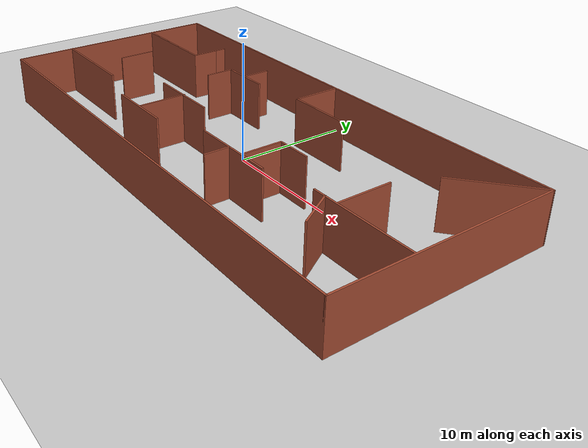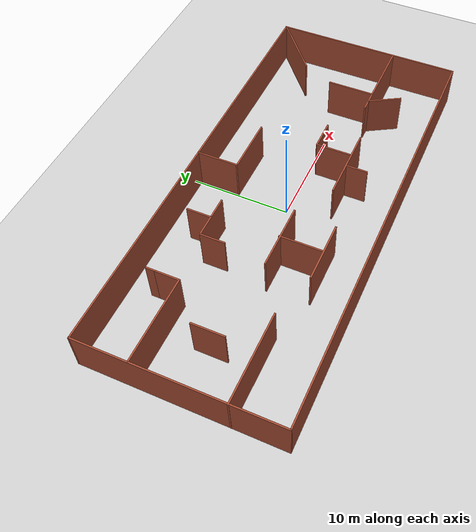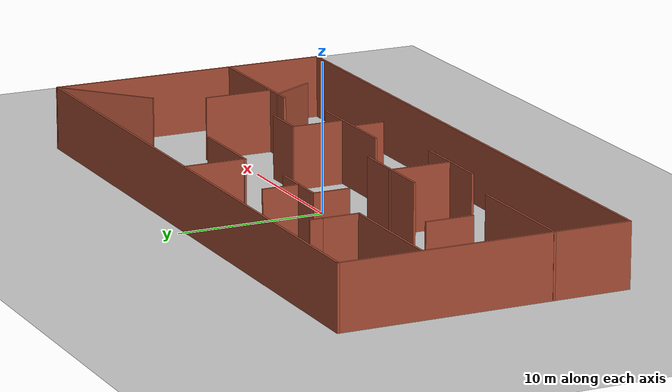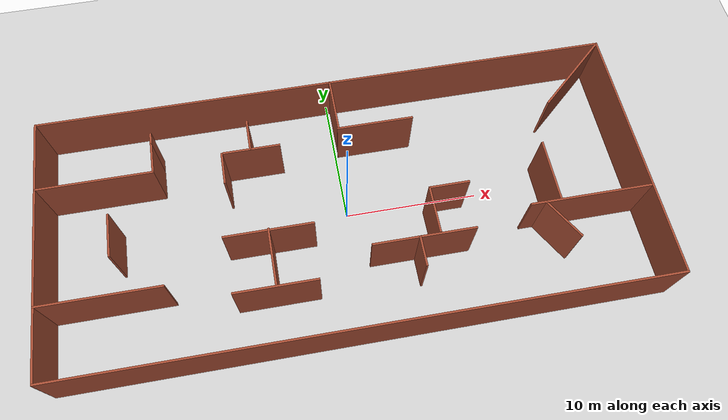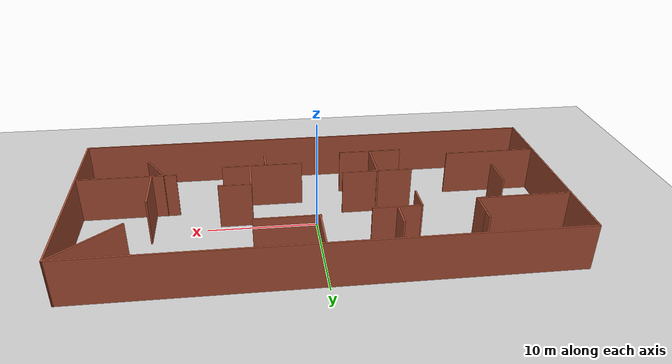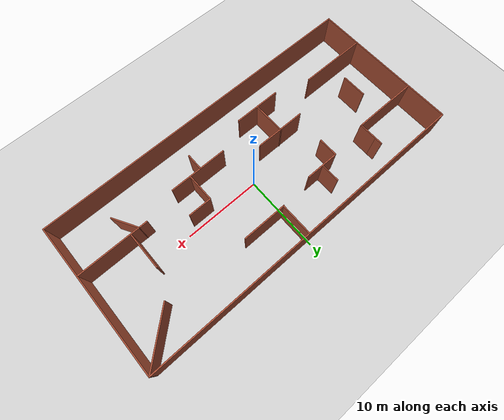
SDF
<sdf version="1.6">
 <world name="default">
  <light name="sun" type="directional">
   <pose>0 0 10 0 -0 0</pose>
   <diffuse>0.8 0.8 0.8 1</diffuse>
   <specular>0.2 0.2 0.2 1</specular>
   <attenuation>
    <range>1000</range>
    <constant>0.9</constant>
    <linear>0.01</linear>
    <quadratic>0.001</quadratic>
   </attenuation>
   <direction>-0.5 0.1 -0.9</direction>
  </light>
  <model name="ground_plane">
   <static>1</static>
   <link name="link">
    <collision name="collision">
     <geometry><plane><normal>0 0 1</normal><size>100 100</size></plane></geometry>
     <surface><friction><ode><mu>100</mu><mu2>50</mu2></ode></friction></surface>
    </collision>
    <visual name="visual">
     <cast_shadows>0</cast_shadows>
     <geometry><plane><normal>0 0 1</normal><size>100 100</size></plane></geometry>
     <material>
      <script><uri>file://media/materials/scripts/gazebo.material</uri><name>Gazebo/Grey</name></script>
     </material>
    </visual>
   </link>
  </model>
  <gravity>0 0 -9.8</gravity>
  <magnetic_field>6e-06 2.3e-05 -4.2e-05</magnetic_field>
  <atmosphere type="adiabatic"/>
  <physics name="default_physics" default="0" type="ode">
   <max_step_size>0.001</max_step_size>
   <real_time_factor>1</real_time_factor>
   <real_time_update_rate>1000</real_time_update_rate>
  </physics>
  <scene><ambient>0.4 0.4 0.4 1</ambient><background>0.7 0.7 0.7 1</background><shadows>1</shadows></scene>
  <spherical_coordinates>
   <surface_model>EARTH_WGS84</surface_model>
   <latitude_deg>0</latitude_deg>
   <longitude_deg>0</longitude_deg>
   <elevation>0</elevation>
   <heading_deg>0</heading_deg>
  </spherical_coordinates>
  <model name="indoor_1">
   <pose>-0.132751 -0.2287 0 0 -0 0</pose>
   <link name="Wall_0">
    <collision name="Wall_0_Collision">
     <geometry><box><size>19.5 0.15 6</size></box></geometry>
     <pose>0 0 1.25 0 -0 0</pose>
    </collision>
    <visual name="Wall_0_Visual">
     <pose>0 0 1.25 0 -0 0</pose>
     <geometry><box><size>19.5 0.15 6</size></box></geometry>
     <material>
      <script><uri>file://media/materials/scripts/gazebo.material</uri><name>Gazebo/Bricks</name></script>
      <ambient>1 1 1 1</ambient>
     </material>
     <meta><layer>0</layer></meta>
    </visual>
    <pose>-21.8078 -0.015409 0 0 -0 -1.5708</pose>
   </link>
   <link name="Wall_1">
    <collision name="Wall_1_Collision">
     <geometry><box><size>43.75 0.15 6</size></box></geometry>
     <pose>0 0 1.25 0 -0 0</pose>
    </collision>
    <visual name="Wall_1_Visual">
     <pose>0 0 1.25 0 -0 0</pose>
     <geometry><box><size>43.75 0.15 6</size></box></geometry>
     <material>
      <script><uri>file://media/materials/scripts/gazebo.material</uri><name>Gazebo/Bricks</name></script>
      <ambient>1 1 1 1</ambient>
     </material>
     <meta><layer>0</layer></meta>
    </visual>
    <pose>-0.007783 -9.69041 0 0 -0 0</pose>
   </link>
   <link name="Wall_10">
    <collision name="Wall_10_Collision">
     <geometry><box><size>3.25 0.15 6</size></box></geometry>
     <pose>0 0 1.25 0 -0 0</pose>
    </collision>
    <visual name="Wall_10_Visual">
     <pose>0 0 1.25 0 -0 0</pose>
     <geometry><box><size>3.25 0.15 6</size></box></geometry>
     <material>
      <script><uri>file://media/materials/scripts/gazebo.material</uri><name>Gazebo/Bricks</name></script>
      <ambient>1 1 1 1</ambient>
     </material>
     <meta><layer>0</layer></meta>
    </visual>
    <pose>-16.7409 -0.192378 0 0 -0 -1.5708</pose>
   </link>
   <link name="Wall_12">
    <collision name="Wall_12_Collision">
     <geometry><box><size>8.75 0.15 6</size></box></geometry>
     <pose>0 0 1.25 0 -0 0</pose>
    </collision>
    <visual name="Wall_12_Visual">
     <pose>0 0 1.25 0 -0 0</pose>
     <geometry><box><size>8.75 0.15 6</size></box></geometry>
     <material>
      <script><uri>file://media/materials/scripts/gazebo.material</uri><name>Gazebo/Bricks</name></script>
      <ambient>1 1 1 1</ambient>
     </material>
     <meta><layer>0</layer></meta>
    </visual>
    <pose>-17.523 -4.55241 0 0 -0 3.14159</pose>
   </link>
   <link name="Wall_14">
    <collision name="Wall_14_Collision">
     <geometry><box><size>4.25 0.15 6</size></box></geometry>
     <pose>0 0 1.25 0 -0 0</pose>
    </collision>
    <visual name="Wall_14_Visual">
     <pose>0 0 1.25 0 -0 0</pose>
     <geometry><box><size>4.25 0.15 6</size></box></geometry>
     <material>
      <script><uri>file://media/materials/scripts/gazebo.material</uri><name>Gazebo/Bricks</name></script>
      <ambient>1 1 1 1</ambient>
     </material>
     <meta><layer>0</layer></meta>
    </visual>
    <pose>-6.17765 4.8755 0 0 -0 0</pose>
   </link>
   <link name="Wall_16">
    <collision name="Wall_16_Collision">
     <geometry><box><size>2.5 0.15 6</size></box></geometry>
     <pose>0 0 1.25 0 -0 0</pose>
    </collision>
    <visual name="Wall_16_Visual">
     <pose>0 0 1.25 0 -0 0</pose>
     <geometry><box><size>2.5 0.15 6</size></box></geometry>
     <material>
      <script><uri>file://media/materials/scripts/gazebo.material</uri><name>Gazebo/Bricks</name></script>
      <ambient>1 1 1 1</ambient>
     </material>
     <meta><layer>0</layer></meta>
    </visual>
    <pose>-6.25764 6.09265 0 0 -0 -1.5708</pose>
   </link>
   <link name="Wall_18">
    <collision name="Wall_18_Collision">
     <geometry><box><size>4.25 0.15 6</size></box></geometry>
     <pose>0 0 1.25 0 -0 0</pose>
    </collision>
    <visual name="Wall_18_Visual">
     <pose>0 0 1.25 0 -0 0</pose>
     <geometry><box><size>4.25 0.15 6</size></box></geometry>
     <material>
      <script><uri>file://media/materials/scripts/gazebo.material</uri><name>Gazebo/Bricks</name></script>
      <ambient>1 1 1 1</ambient>
     </material>
     <meta><layer>0</layer></meta>
    </visual>
    <pose>0.426324 7.5962 0 0 -0 1.5708</pose>
   </link>
   <link name="Wall_2">
    <collision name="Wall_2_Collision">
     <geometry><box><size>19.5 0.15 6</size></box></geometry>
     <pose>0 0 1.25 0 -0 0</pose>
    </collision>
    <visual name="Wall_2_Visual">
     <pose>0 0 1.25 0 -0 0</pose>
     <geometry><box><size>19.5 0.15 6</size></box></geometry>
     <material>
      <script><uri>file://media/materials/scripts/gazebo.material</uri><name>Gazebo/Bricks</name></script>
      <ambient>1 1 1 1</ambient>
     </material>
     <meta><layer>0</layer></meta>
    </visual>
    <pose>21.7922 -0.015409 0 0 -0 1.5708</pose>
   </link>
   <link name="Wall_20">
    <collision name="Wall_20_Collision">
     <geometry><box><size>5.75 0.15 6</size></box></geometry>
     <pose>0 0 1.25 0 -0 0</pose>
    </collision>
    <visual name="Wall_20_Visual">
     <pose>0 0 1.25 0 -0 0</pose>
     <geometry><box><size>5.75 0.15 6</size></box></geometry>
     <material>
      <script><uri>file://media/materials/scripts/gazebo.material</uri><name>Gazebo/Bricks</name></script>
      <ambient>1 1 1 1</ambient>
     </material>
     <meta><layer>0</layer></meta>
    </visual>
    <pose>3.18457 5.50872 0 0 -0 3.14159</pose>
   </link>
   <link name="Wall_22">
    <collision name="Wall_22_Collision">
     <geometry><box><size>2.5 0.15 6</size></box></geometry>
     <pose>0 0 1.25 0 -0 0</pose>
    </collision>
    <visual name="Wall_22_Visual">
     <pose>0 0 1.25 0 -0 0</pose>
     <geometry><box><size>2.5 0.15 6</size></box></geometry>
     <material>
      <script><uri>file://media/materials/scripts/gazebo.material</uri><name>Gazebo/Bricks</name></script>
      <ambient>1 1 1 1</ambient>
     </material>
     <meta><layer>0</layer></meta>
    </visual>
    <pose>-8.36837 3.65834 0 0 -0 1.5708</pose>
   </link>
   <link name="Wall_24">
    <collision name="Wall_24_Collision">
     <geometry><box><size>6.5 0.15 6</size></box></geometry>
     <pose>0 0 1.25 0 -0 0</pose>
    </collision>
    <visual name="Wall_24_Visual">
     <pose>0 0 1.25 0 -0 0</pose>
     <geometry><box><size>6.5 0.15 6</size></box></geometry>
     <material>
      <script><uri>file://media/materials/scripts/gazebo.material</uri><name>Gazebo/Bricks</name></script>
      <ambient>1 1 1 1</ambient>
     </material>
     <meta><layer>0</layer></meta>
    </visual>
    <pose>-5.75623 -1.73811 0 0 -0 0</pose>
   </link>
   <link name="Wall_26">
    <collision name="Wall_26_Collision">
     <geometry><box><size>4.25 0.15 6</size></box></geometry>
     <pose>0 0 1.25 0 -0 0</pose>
    </collision>
    <visual name="Wall_26_Visual">
     <pose>0 0 1.25 0 -0 0</pose>
     <geometry><box><size>4.25 0.15 6</size></box></geometry>
     <material>
      <script><uri>file://media/materials/scripts/gazebo.material</uri><name>Gazebo/Bricks</name></script>
      <ambient>1 1 1 1</ambient>
     </material>
     <meta><layer>0</layer></meta>
    </visual>
    <pose>-5.76514 -3.71775 0 0 -0 -1.5708</pose>
   </link>
   <link name="Wall_28">
    <collision name="Wall_28_Collision">
     <geometry><box><size>6 0.15 6</size></box></geometry>
     <pose>0 0 1.25 0 -0 0</pose>
    </collision>
    <visual name="Wall_28_Visual">
     <pose>0 0 1.25 0 -0 0</pose>
     <geometry><box><size>6 0.15 6</size></box></geometry>
     <material>
      <script><uri>file://media/materials/scripts/gazebo.material</uri><name>Gazebo/Bricks</name></script>
      <ambient>1 1 1 1</ambient>
     </material>
     <meta><layer>0</layer></meta>
    </visual>
    <pose>-5.79516 -5.8892 0 0 -0 0</pose>
   </link>
   <link name="Wall_3">
    <collision name="Wall_3_Collision">
     <geometry><box><size>43.75 0.15 6</size></box></geometry>
     <pose>0 0 1.25 0 -0 0</pose>
    </collision>
    <visual name="Wall_3_Visual">
     <pose>0 0 1.25 0 -0 0</pose>
     <geometry><box><size>43.75 0.15 6</size></box></geometry>
     <material>
      <script><uri>file://media/materials/scripts/gazebo.material</uri><name>Gazebo/Bricks</name></script>
      <ambient>1 1 1 1</ambient>
     </material>
     <meta><layer>0</layer></meta>
    </visual>
    <pose>-0.007783 9.65959 0 0 -0 3.14159</pose>
   </link>
   <link name="Wall_30">
    <collision name="Wall_30_Collision">
     <geometry><box><size>4.75 0.15 6</size></box></geometry>
     <pose>0 0 1.25 0 -0 0</pose>
    </collision>
    <visual name="Wall_30_Visual">
     <pose>0 0 1.25 0 -0 0</pose>
     <geometry><box><size>4.75 0.15 6</size></box></geometry>
     <material>
      <script><uri>file://media/materials/scripts/gazebo.material</uri><name>Gazebo/Bricks</name></script>
      <ambient>1 1 1 1</ambient>
     </material>
     <meta><layer>0</layer></meta>
    </visual>
    <pose>14.9903 -0.634187 0 0 -0 1.5708</pose>
   </link>
   <link name="Wall_32">
    <collision name="Wall_32_Collision">
     <geometry><box><size>7.2147 0.15 6</size></box></geometry>
     <pose>0 0 1.25 0 -0 0</pose>
    </collision>
    <visual name="Wall_32_Visual">
     <pose>0 0 1.25 0 -0 0</pose>
     <geometry><box><size>7.2147 0.15 6</size></box></geometry>
     <material>
      <script><uri>file://media/materials/scripts/gazebo.material</uri><name>Gazebo/Bricks</name></script>
      <ambient>1 1 1 1</ambient>
     </material>
     <meta><layer>0</layer></meta>
    </visual>
    <pose>19.13 7.3379 0 0 -0 0.717184</pose>
   </link>
   <link name="Wall_34">
    <collision name="Wall_34_Collision">
     <geometry><box><size>9 0.15 6</size></box></geometry>
     <pose>0 0 1.25 0 -0 0</pose>
    </collision>
    <visual name="Wall_34_Visual">
     <pose>0 0 1.25 0 -0 0</pose>
     <geometry><box><size>9 0.15 6</size></box></geometry>
     <material>
      <script><uri>file://media/materials/scripts/gazebo.material</uri><name>Gazebo/Bricks</name></script>
      <ambient>1 1 1 1</ambient>
     </material>
     <meta><layer>0</layer></meta>
    </visual>
    <pose>17.2493 -3.00454 0 0 -0 3.14159</pose>
   </link>
   <link name="Wall_38">
    <collision name="Wall_38_Collision">
     <geometry><box><size>3.5 0.15 6</size></box></geometry>
     <pose>0 0 1.25 0 -0 0</pose>
    </collision>
    <visual name="Wall_38_Visual">
     <pose>0 0 1.25 0 -0 0</pose>
     <geometry><box><size>3.5 0.15 6</size></box></geometry>
     <material>
      <script><uri>file://media/materials/scripts/gazebo.material</uri><name>Gazebo/Bricks</name></script>
      <ambient>1 1 1 1</ambient>
     </material>
     <meta><layer>0</layer></meta>
    </visual>
    <pose>14.7021 -4.45514 0 0 -0 -1.0472</pose>
   </link>
   <link name="Wall_40">
    <collision name="Wall_40_Collision">
     <geometry><box><size>7.5 0.15 6</size></box></geometry>
     <pose>0 0 1.25 0 -0 0</pose>
    </collision>
    <visual name="Wall_40_Visual">
     <pose>0 0 1.25 0 -0 0</pose>
     <geometry><box><size>7.5 0.15 6</size></box></geometry>
     <material>
      <script><uri>file://media/materials/scripts/gazebo.material</uri><name>Gazebo/Bricks</name></script>
      <ambient>1 1 1 1</ambient>
     </material>
     <meta><layer>0</layer></meta>
    </visual>
    <pose>4.84244 -4.05991 0 0 -0 3.14159</pose>
   </link>
   <link name="Wall_42">
    <collision name="Wall_42_Collision">
     <geometry><box><size>2.25 0.15 6</size></box></geometry>
     <pose>0 0 1.25 0 -0 0</pose>
    </collision>
    <visual name="Wall_42_Visual">
     <pose>0 0 1.25 0 -0 0</pose>
     <geometry><box><size>2.25 0.15 6</size></box></geometry>
     <material>
      <script><uri>file://media/materials/scripts/gazebo.material</uri><name>Gazebo/Bricks</name></script>
      <ambient>1 1 1 1</ambient>
     </material>
     <meta><layer>0</layer></meta>
    </visual>
    <pose>4.50706 -5.12063 0 0 -0 1.5708</pose>
   </link>
   <link name="Wall_44">
    <collision name="Wall_44_Collision">
     <geometry><box><size>3.5 0.15 6</size></box></geometry>
     <pose>0 0 1.25 0 -0 0</pose>
    </collision>
    <visual name="Wall_44_Visual">
     <pose>0 0 1.25 0 -0 0</pose>
     <geometry><box><size>3.5 0.15 6</size></box></geometry>
     <material>
      <script><uri>file://media/materials/scripts/gazebo.material</uri><name>Gazebo/Bricks</name></script>
      <ambient>1 1 1 1</ambient>
     </material>
     <meta><layer>0</layer></meta>
    </visual>
    <pose>5.98457 -2.21703 0 0 -0 -1.5708</pose>
   </link>
   <link name="Wall_46">
    <collision name="Wall_46_Collision">
     <geometry><box><size>3 0.15 6</size></box></geometry>
     <pose>0 0 1.25 0 -0 0</pose>
    </collision>
    <visual name="Wall_46_Visual">
     <pose>0 0 1.25 0 -0 0</pose>
     <geometry><box><size>3 0.15 6</size></box></geometry>
     <material>
      <script><uri>file://media/materials/scripts/gazebo.material</uri><name>Gazebo/Bricks</name></script>
      <ambient>1 1 1 1</ambient>
     </material>
     <meta><layer>0</layer></meta>
    </visual>
    <pose>7.44423 -0.471674 0 0 -0 3.14159</pose>
   </link>
   <link name="Wall_6">
    <collision name="Wall_6_Collision">
     <geometry><box><size>8.5 0.15 6</size></box></geometry>
     <pose>0 0 1.25 0 -0 0</pose>
    </collision>
    <visual name="Wall_6_Visual">
     <pose>0 0 1.25 0 -0 0</pose>
     <geometry><box><size>8.5 0.15 6</size></box></geometry>
     <material>
      <script><uri>file://media/materials/scripts/gazebo.material</uri><name>Gazebo/Bricks</name></script>
      <ambient>1 1 1 1</ambient>
     </material>
     <meta><layer>0</layer></meta>
    </visual>
    <pose>-17.5748 4.22075 0 0 -0 0</pose>
   </link>
   <link name="Wall_7">
    <collision name="Wall_7_Collision">
     <geometry><box><size>2.5 0.15 6</size></box></geometry>
     <pose>0 0 1.25 0 -0 0</pose>
    </collision>
    <visual name="Wall_7_Visual">
     <pose>0 0 1.25 0 -0 0</pose>
     <geometry><box><size>2.5 0.15 6</size></box></geometry>
     <material>
      <script><uri>file://media/materials/scripts/gazebo.material</uri><name>Gazebo/Bricks</name></script>
      <ambient>1 1 1 1</ambient>
     </material>
     <meta><layer>0</layer></meta>
    </visual>
    <pose>-13.3998 5.39576 0 0 -0 1.5708</pose>
   </link>
   <link name="Wall_8">
    <collision name="Wall_8_Collision">
     <geometry><box><size>1 0.15 6</size></box></geometry>
     <pose>0 0 1.25 0 -0 0</pose>
    </collision>
    <visual name="Wall_8_Visual">
     <pose>0 0 1.25 0 -0 0</pose>
     <geometry><box><size>1 0.15 6</size></box></geometry>
     <material>
      <script><uri>file://media/materials/scripts/gazebo.material</uri><name>Gazebo/Bricks</name></script>
      <ambient>1 1 1 1</ambient>
     </material>
     <meta><layer>0</layer></meta>
    </visual>
    <pose>-13.3998 6.99575 0 0 -0 1.5708</pose>
   </link>
   <static>1</static>
  </model>
 </world>
</sdf>
